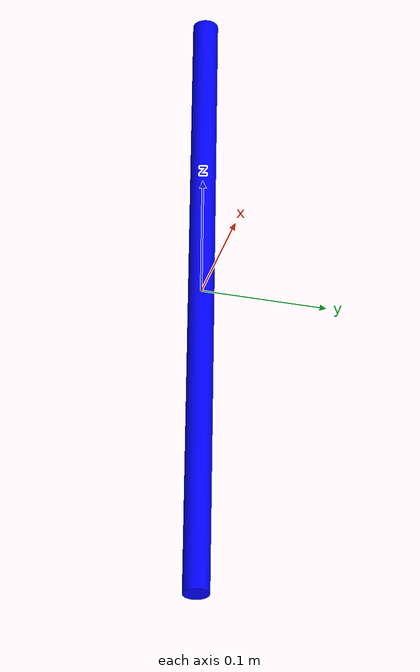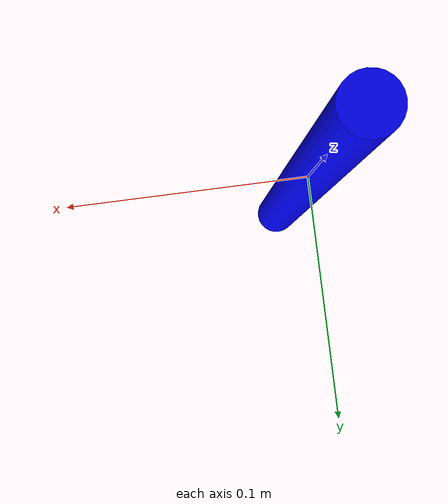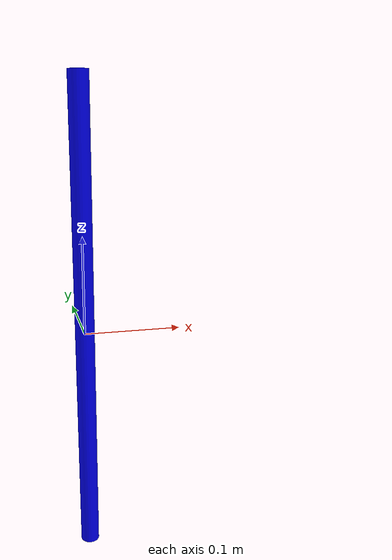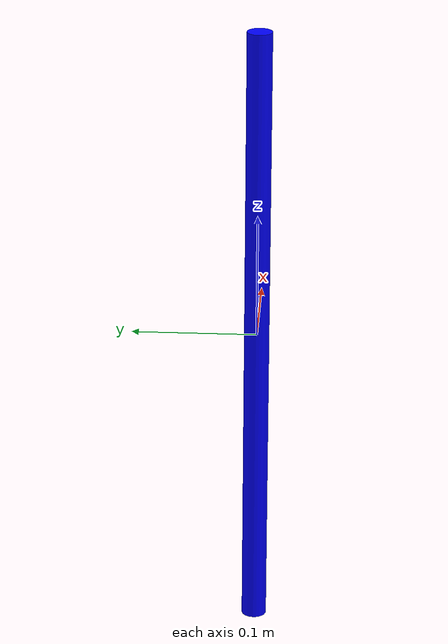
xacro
<?xml version="1.0"?>
<robot xmlns:xacro="http://ros.org/wiki/xacro" name="object_cylinder">

  <link name="cylinder_link">
    <!-- Visual for rendering -->
    <visual>
      <geometry>
        <cylinder radius="0.01" length="0.5"/>
      </geometry>
      <material name="blue">
        <color rgba="0 0 1 1"/>
      </material>
    </visual>

    <!-- Collision for physics -->
    <collision>
      <geometry>
        <cylinder radius="0.01" length="0.5"/>
      </geometry>
    </collision>

    <!-- Inertial for dynamics -->
    <inertial>
      <mass value="0.2"/>
      <origin xyz="0 0 0" rpy="0 0 0"/>
      <inertia
        ixx="0.0001"
        ixy="0.0"
        ixz="0.0"
        iyy="0.0001"
        iyz="0.0"
        izz="0.0001"/>
    </inertial>
  </link>

  <gazebo reference="cylinder_link">
    <material>Gazebo/Blue</material>
  </gazebo>

</robot>
